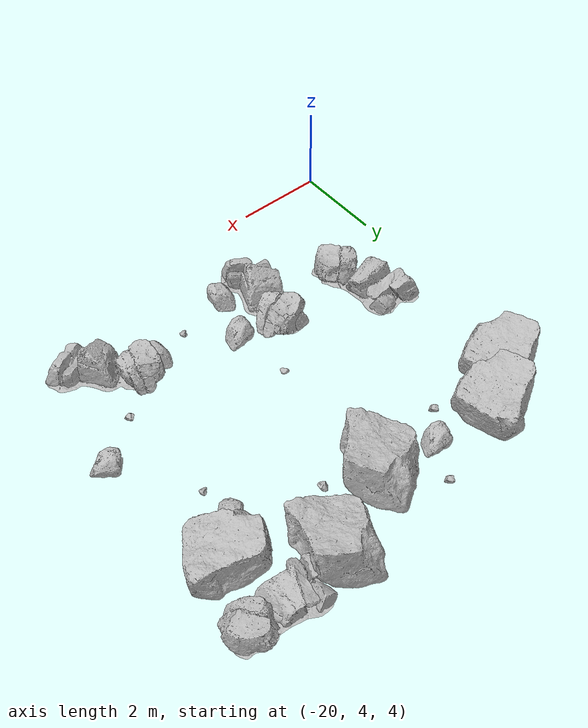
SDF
<sdf version="1.7">
 <world name="marsyard">
  <model name="Rock_87">
   <static>true</static>
   <pose>-11.7268 11.4727 4.0000 0.0000 0.0000 -1.3000</pose>
   <link name="link">
    <visual name="visual">
     <geometry><mesh><uri>package://rock_generator/rocks_ws/rock_1/meshes/rock_1.stl</uri></mesh></geometry>
    </visual>
    <collision name="collision">
     <geometry><mesh><uri>package://rock_generator/rocks_ws/rock_1/meshes/rock_1.stl</uri></mesh></geometry>
    </collision>
   </link>
  </model>
  <model name="Rock_135">
   <static>true</static>
   <pose>-17.4097 11.0608 4.0000 0.0000 0.0000 2.5920</pose>
   <link name="link">
    <visual name="visual">
     <geometry><mesh><uri>package://rock_generator/rocks_ws/rock_9/meshes/rock_9.stl</uri></mesh></geometry>
    </visual>
    <collision name="collision">
     <geometry><mesh><uri>package://rock_generator/rocks_ws/rock_9/meshes/rock_9.stl</uri></mesh></geometry>
    </collision>
   </link>
  </model>
  <model name="Rock_178">
   <static>true</static>
   <pose>-13.7212 6.3809 4.0000 0.0000 0.0000 -0.5393</pose>
   <link name="link">
    <visual name="visual">
     <geometry><mesh><uri>package://rock_generator/rocks_ws/rock_3/meshes/rock_3.stl</uri></mesh></geometry>
    </visual>
    <collision name="collision">
     <geometry><mesh><uri>package://rock_generator/rocks_ws/rock_3/meshes/rock_3.stl</uri></mesh></geometry>
    </collision>
   </link>
  </model>
  <model name="Rock_212">
   <static>true</static>
   <pose>-11.3162 8.0466 4.0000 0.0000 0.0000 -2.7362</pose>
   <link name="link">
    <visual name="visual">
     <geometry><mesh><uri>package://rock_generator/rocks_ws/rock_3/meshes/rock_3.stl</uri></mesh></geometry>
    </visual>
    <collision name="collision">
     <geometry><mesh><uri>package://rock_generator/rocks_ws/rock_3/meshes/rock_3.stl</uri></mesh></geometry>
    </collision>
   </link>
  </model>
  <model name="Rock_233">
   <static>true</static>
   <pose>-15.4668 6.9419 4.0000 0.0000 0.0000 -1.9486</pose>
   <link name="link">
    <visual name="visual">
     <geometry><mesh><uri>package://rock_generator/rocks_ws/rock_3/meshes/rock_3.stl</uri></mesh></geometry>
    </visual>
    <collision name="collision">
     <geometry><mesh><uri>package://rock_generator/rocks_ws/rock_3/meshes/rock_3.stl</uri></mesh></geometry>
    </collision>
   </link>
  </model>
  <model name="Rock_237">
   <static>true</static>
   <pose>-16.6160 6.4797 4.0000 0.0000 0.0000 -1.7268</pose>
   <link name="link">
    <visual name="visual">
     <geometry><mesh><uri>package://rock_generator/rocks_ws/rock_2/meshes/rock_2.stl</uri></mesh></geometry>
    </visual>
    <collision name="collision">
     <geometry><mesh><uri>package://rock_generator/rocks_ws/rock_2/meshes/rock_2.stl</uri></mesh></geometry>
    </collision>
   </link>
  </model>
  <model name="Rock_250">
   <static>true</static>
   <pose>-16.4014 12.5927 4.0000 0.0000 0.0000 2.6172</pose>
   <link name="link">
    <visual name="visual">
     <geometry><mesh><uri>package://rock_generator/rocks_ws/rock_9/meshes/rock_9.stl</uri></mesh></geometry>
    </visual>
    <collision name="collision">
     <geometry><mesh><uri>package://rock_generator/rocks_ws/rock_9/meshes/rock_9.stl</uri></mesh></geometry>
    </collision>
   </link>
  </model>
  <model name="Rock_286">
   <static>true</static>
   <pose>-18.6436 7.3278 4.0000 0.0000 0.0000 1.8819</pose>
   <link name="link">
    <visual name="visual">
     <geometry><mesh><uri>package://rock_generator/rocks_ws/rock_2/meshes/rock_2.stl</uri></mesh></geometry>
    </visual>
    <collision name="collision">
     <geometry><mesh><uri>package://rock_generator/rocks_ws/rock_2/meshes/rock_2.stl</uri></mesh></geometry>
    </collision>
   </link>
  </model>
  <model name="Rock_302">
   <static>true</static>
   <pose>-15.6832 8.3032 4.0000 0.0000 0.0000 -1.5822</pose>
   <link name="link">
    <visual name="visual">
     <geometry><mesh><uri>package://rock_generator/rocks_ws/rock_7/meshes/rock_7.stl</uri></mesh></geometry>
    </visual>
    <collision name="collision">
     <geometry><mesh><uri>package://rock_generator/rocks_ws/rock_7/meshes/rock_7.stl</uri></mesh></geometry>
    </collision>
   </link>
  </model>
  <model name="Rock_310">
   <static>true</static>
   <pose>-12.7976 6.0144 4.0000 0.0000 0.0000 -0.7355</pose>
   <link name="link">
    <visual name="visual">
     <geometry><mesh><uri>package://rock_generator/rocks_ws/rock_2/meshes/rock_2.stl</uri></mesh></geometry>
    </visual>
    <collision name="collision">
     <geometry><mesh><uri>package://rock_generator/rocks_ws/rock_2/meshes/rock_2.stl</uri></mesh></geometry>
    </collision>
   </link>
  </model>
  <model name="Rock_335">
   <static>true</static>
   <pose>-16.7509 11.7511 4.0000 0.0000 0.0000 -2.1789</pose>
   <link name="link">
    <visual name="visual">
     <geometry><mesh><uri>package://rock_generator/rocks_ws/rock_3/meshes/rock_3.stl</uri></mesh></geometry>
    </visual>
    <collision name="collision">
     <geometry><mesh><uri>package://rock_generator/rocks_ws/rock_3/meshes/rock_3.stl</uri></mesh></geometry>
    </collision>
   </link>
  </model>
  <model name="Rock_354">
   <static>true</static>
   <pose>-13.4154 12.3990 4.0000 0.0000 0.0000 -2.8506</pose>
   <link name="link">
    <visual name="visual">
     <geometry><mesh><uri>package://rock_generator/rocks_ws/rock_1/meshes/rock_1.stl</uri></mesh></geometry>
    </visual>
    <collision name="collision">
     <geometry><mesh><uri>package://rock_generator/rocks_ws/rock_1/meshes/rock_1.stl</uri></mesh></geometry>
    </collision>
   </link>
  </model>
  <model name="Rock_382">
   <static>true</static>
   <pose>-11.8490 12.7592 4.0000 0.0000 0.0000 -3.0852</pose>
   <link name="link">
    <visual name="visual">
     <geometry><mesh><uri>package://rock_generator/rocks_ws/rock_2/meshes/rock_2.stl</uri></mesh></geometry>
    </visual>
    <collision name="collision">
     <geometry><mesh><uri>package://rock_generator/rocks_ws/rock_2/meshes/rock_2.stl</uri></mesh></geometry>
    </collision>
   </link>
  </model>
  <model name="Rock_393">
   <static>true</static>
   <pose>-14.3610 11.1234 4.0000 0.0000 0.0000 -0.2141</pose>
   <link name="link">
    <visual name="visual">
     <geometry><mesh><uri>package://rock_generator/rocks_ws/rock_9/meshes/rock_9.stl</uri></mesh></geometry>
    </visual>
    <collision name="collision">
     <geometry><mesh><uri>package://rock_generator/rocks_ws/rock_9/meshes/rock_9.stl</uri></mesh></geometry>
    </collision>
   </link>
  </model>
  <model name="Rock_397">
   <static>true</static>
   <pose>-12.4214 7.2484 4.0000 0.0000 0.0000 2.3489</pose>
   <link name="link">
    <visual name="visual">
     <geometry><mesh><uri>package://rock_generator/rocks_ws/rock_9/meshes/rock_9.stl</uri></mesh></geometry>
    </visual>
    <collision name="collision">
     <geometry><mesh><uri>package://rock_generator/rocks_ws/rock_9/meshes/rock_9.stl</uri></mesh></geometry>
    </collision>
   </link>
  </model>
  <model name="Rock_408">
   <static>true</static>
   <pose>-14.6627 6.0802 4.0000 0.0000 0.0000 -2.6731</pose>
   <link name="link">
    <visual name="visual">
     <geometry><mesh><uri>package://rock_generator/rocks_ws/rock_7/meshes/rock_7.stl</uri></mesh></geometry>
    </visual>
    <collision name="collision">
     <geometry><mesh><uri>package://rock_generator/rocks_ws/rock_7/meshes/rock_7.stl</uri></mesh></geometry>
    </collision>
   </link>
  </model>
  <model name="Rock_429">
   <static>true</static>
   <pose>-16.6512 7.3676 4.0000 0.0000 0.0000 0.0071</pose>
   <link name="link">
    <visual name="visual">
     <geometry><mesh><uri>package://rock_generator/rocks_ws/rock_3/meshes/rock_3.stl</uri></mesh></geometry>
    </visual>
    <collision name="collision">
     <geometry><mesh><uri>package://rock_generator/rocks_ws/rock_3/meshes/rock_3.stl</uri></mesh></geometry>
    </collision>
   </link>
  </model>
  <model name="Rock_440">
   <static>true</static>
   <pose>-12.4589 9.7233 4.0000 0.0000 0.0000 -2.9503</pose>
   <link name="link">
    <visual name="visual">
     <geometry><mesh><uri>package://rock_generator/rocks_ws/rock_7/meshes/rock_7.stl</uri></mesh></geometry>
    </visual>
    <collision name="collision">
     <geometry><mesh><uri>package://rock_generator/rocks_ws/rock_7/meshes/rock_7.stl</uri></mesh></geometry>
    </collision>
   </link>
  </model>
  <model name="Rock_444">
   <static>true</static>
   <pose>-12.5500 10.5566 4.0000 0.0000 0.0000 1.7868</pose>
   <link name="link">
    <visual name="visual">
     <geometry><mesh><uri>package://rock_generator/rocks_ws/rock_3/meshes/rock_3.stl</uri></mesh></geometry>
    </visual>
    <collision name="collision">
     <geometry><mesh><uri>package://rock_generator/rocks_ws/rock_3/meshes/rock_3.stl</uri></mesh></geometry>
    </collision>
   </link>
  </model>
  <model name="Rock_457">
   <static>true</static>
   <pose>-15.8236 5.8851 4.0000 0.0000 0.0000 -0.7239</pose>
   <link name="link">
    <visual name="visual">
     <geometry><mesh><uri>package://rock_generator/rocks_ws/rock_3/meshes/rock_3.stl</uri></mesh></geometry>
    </visual>
    <collision name="collision">
     <geometry><mesh><uri>package://rock_generator/rocks_ws/rock_3/meshes/rock_3.stl</uri></mesh></geometry>
    </collision>
   </link>
  </model>
  <model name="Rock_467">
   <static>true</static>
   <pose>-18.3967 11.9672 4.0000 0.0000 0.0000 -0.5267</pose>
   <link name="link">
    <visual name="visual">
     <geometry><mesh><uri>package://rock_generator/rocks_ws/rock_1/meshes/rock_1.stl</uri></mesh></geometry>
    </visual>
    <collision name="collision">
     <geometry><mesh><uri>package://rock_generator/rocks_ws/rock_1/meshes/rock_1.stl</uri></mesh></geometry>
    </collision>
   </link>
  </model>
  <model name="Rock_490">
   <static>true</static>
   <pose>-15.3342 11.4292 4.0000 0.0000 0.0000 2.9216</pose>
   <link name="link">
    <visual name="visual">
     <geometry><mesh><uri>package://rock_generator/rocks_ws/rock_1/meshes/rock_1.stl</uri></mesh></geometry>
    </visual>
    <collision name="collision">
     <geometry><mesh><uri>package://rock_generator/rocks_ws/rock_1/meshes/rock_1.stl</uri></mesh></geometry>
    </collision>
   </link>
  </model>
  <model name="Rock_492">
   <static>true</static>
   <pose>-19.2598 11.2827 4.0000 0.0000 0.0000 -0.4724</pose>
   <link name="link">
    <visual name="visual">
     <geometry><mesh><uri>package://rock_generator/rocks_ws/rock_1/meshes/rock_1.stl</uri></mesh></geometry>
    </visual>
    <collision name="collision">
     <geometry><mesh><uri>package://rock_generator/rocks_ws/rock_1/meshes/rock_1.stl</uri></mesh></geometry>
    </collision>
   </link>
  </model>
 </world>
</sdf>
